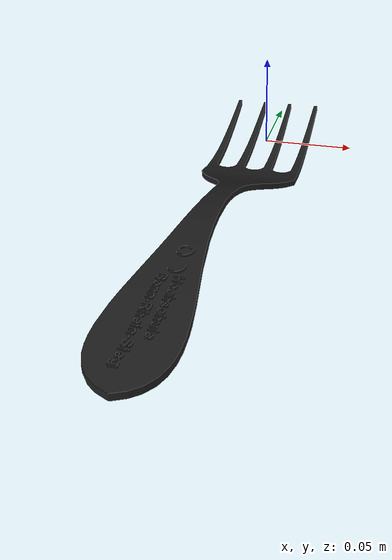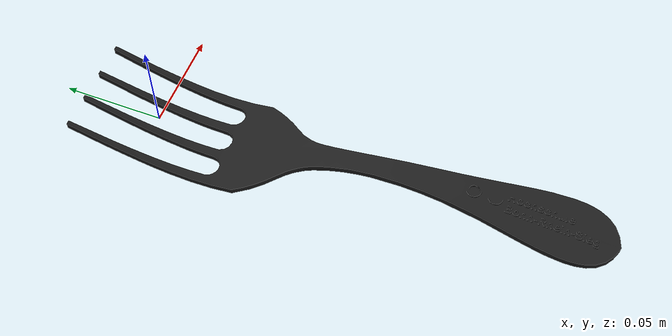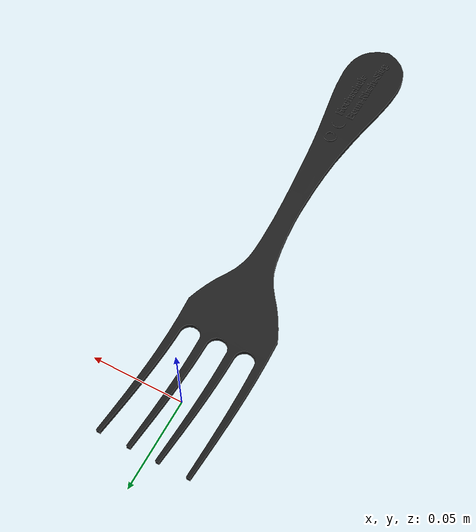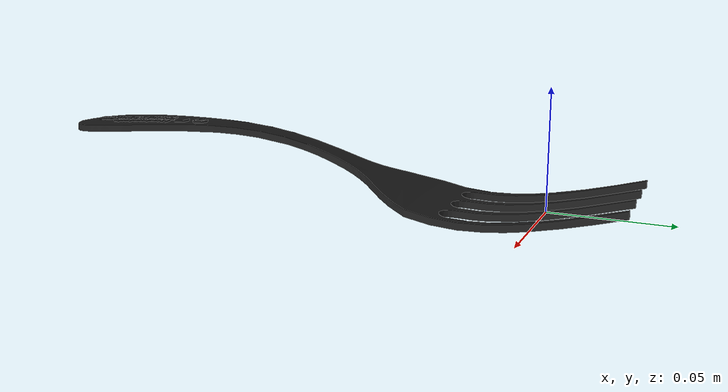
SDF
<?xml version='1.0'?>
<sdf version="1.5">
  <model name="fork"> <!-- Very important to change-->
    <static>false</static>
    <pose>0 0 0 0 0 0</pose> <!-- Translation: X Y Z and Rotation: Roll Pitch Yaw (In Radian)-->
    <link name="body">

      <inertial>
      <mass>0.044</mass>
        <inertia>
          <ixx>1</ixx>
          <ixy>0</ixy>
          <ixz>0</ixz>
          <iyy>1</iyy>
          <iyz>0</iyz>
          <izz>1</izz>
        </inertia>
      </inertial>

       <collision name="collision"> <!-- You can use mesh like below -->
        <geometry>
          <mesh>
             <uri>/home/sorox23/robotic_ws/master_thesis_ws/src/property_based_tester/environment/models/fork/meshes/fork.stl</uri>
             <scale>0.001 0.001 0.001</scale>
          </mesh>
        </geometry>
      </collision>

      <visual name="visual">
        <geometry>
          <mesh>
             <uri>/home/sorox23/robotic_ws/master_thesis_ws/src/property_based_tester/environment/models/fork/meshes/fork.stl</uri>
             <scale>0.001 0.001 0.001</scale>
          </mesh>
        </geometry>

        <material>
          <script>
             <uri>/home/sorox23/robotic_ws/master_thesis_ws/src/property_based_tester/environment/models/fork/materials/scripts</uri>
             <uri>/home/sorox23/robotic_ws/master_thesis_ws/src/property_based_tester/environment/models/fork/materials/textures</uri>
             <name>Gazebo/FlatBlack</name>
          </script>
        </material>
      </visual>
    </link>
  </model>
</sdf>
